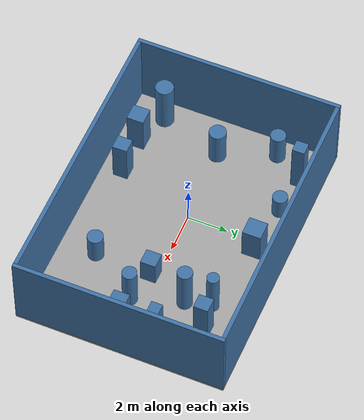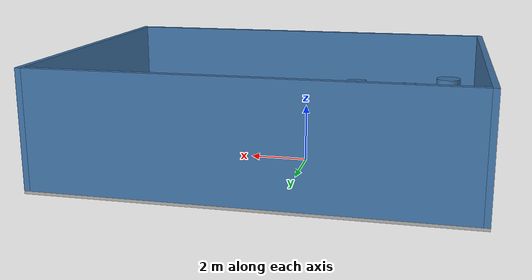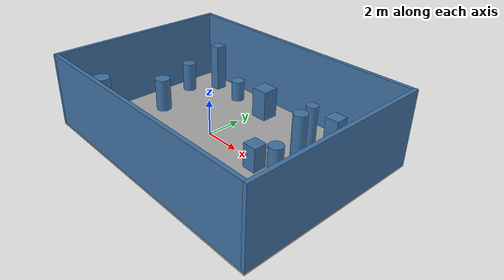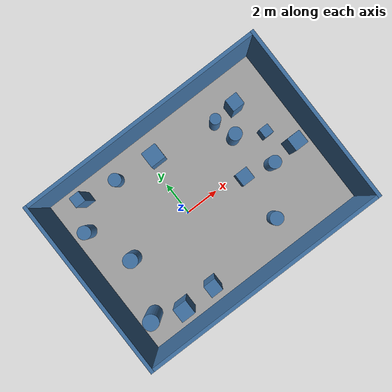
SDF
<?xml version="1.0" encoding="utf-8"?>
<sdf version="1.6">
  <world name="default">
    <gravity>0 0 -9.8</gravity>
    <magnetic_field>6e-06 2.3e-05 -4.2e-05</magnetic_field>
    <physics name="default_physics" type="ode">
      <max_step_size>.001</max_step_size>
      <real_time_factor>1</real_time_factor>
      <real_time_update_rate>1000</real_time_update_rate>
    </physics>
    <scene>
      <ambient>.5 .5 .5 1</ambient>
      <background>.7 .7 .7 1</background>
      <shadows>false</shadows>
    </scene>
    <light name="sun" type="directional">
      <pose>0 0 10 0 0 0</pose>
      <diffuse>.8 .8 .8 1</diffuse>
      <direction>-.2 .1 -1</direction>
    </light>
    <model name="arena_floor">
      <static>true</static>
      <pose>1.000000 0.000000 -0.050000 0.000000 0.000000 0.000000</pose>
      <link name="body">
        <collision name="collision">
          <geometry>
            <box>
              <size>14.400000 10.400000 0.100000</size>
            </box>
          </geometry>
        </collision>
        <visual name="visual">
          <geometry>
            <box>
              <size>14.400000 10.400000 0.100000</size>
            </box>
          </geometry>
          <material>
            <ambient>.65 .65 .65 1</ambient>
            <diffuse>.65 .65 .65 1</diffuse>
          </material>
        </visual>
      </link>
    </model>
    <model name="boundary_west">
      <static>true</static>
      <pose>-6.100000 0.000000 2.000000 0.000000 0.000000 0.000000</pose>
      <link name="body">
        <collision name="collision">
          <geometry>
            <box>
              <size>0.200000 10.400000 4.000000</size>
            </box>
          </geometry>
        </collision>
        <visual name="visual">
          <geometry>
            <box>
              <size>0.200000 10.400000 4.000000</size>
            </box>
          </geometry>
          <material>
            <ambient>.25 .45 .65 1</ambient>
            <diffuse>.25 .45 .65 1</diffuse>
          </material>
        </visual>
      </link>
    </model>
    <model name="boundary_east">
      <static>true</static>
      <pose>8.100000 0.000000 2.000000 0.000000 0.000000 0.000000</pose>
      <link name="body">
        <collision name="collision">
          <geometry>
            <box>
              <size>0.200000 10.400000 4.000000</size>
            </box>
          </geometry>
        </collision>
        <visual name="visual">
          <geometry>
            <box>
              <size>0.200000 10.400000 4.000000</size>
            </box>
          </geometry>
          <material>
            <ambient>.25 .45 .65 1</ambient>
            <diffuse>.25 .45 .65 1</diffuse>
          </material>
        </visual>
      </link>
    </model>
    <model name="boundary_south">
      <static>true</static>
      <pose>1.000000 -5.100000 2.000000 0.000000 0.000000 0.000000</pose>
      <link name="body">
        <collision name="collision">
          <geometry>
            <box>
              <size>14.000000 0.200000 4.000000</size>
            </box>
          </geometry>
        </collision>
        <visual name="visual">
          <geometry>
            <box>
              <size>14.000000 0.200000 4.000000</size>
            </box>
          </geometry>
          <material>
            <ambient>.25 .45 .65 1</ambient>
            <diffuse>.25 .45 .65 1</diffuse>
          </material>
        </visual>
      </link>
    </model>
    <model name="boundary_north">
      <static>true</static>
      <pose>1.000000 5.100000 2.000000 0.000000 0.000000 0.000000</pose>
      <link name="body">
        <collision name="collision">
          <geometry>
            <box>
              <size>14.000000 0.200000 4.000000</size>
            </box>
          </geometry>
        </collision>
        <visual name="visual">
          <geometry>
            <box>
              <size>14.000000 0.200000 4.000000</size>
            </box>
          </geometry>
          <material>
            <ambient>.25 .45 .65 1</ambient>
            <diffuse>.25 .45 .65 1</diffuse>
          </material>
        </visual>
      </link>
    </model>
    <model name="obstacle_000">
      <static>true</static>
      <pose>0.439000 3.572000 0.856500 0.000000 0.000000 0.000000</pose>
      <link name="body">
        <collision name="collision">
          <geometry>
            <box>
              <size>0.930000 0.930000 1.713000</size>
            </box>
          </geometry>
        </collision>
        <visual name="visual">
          <geometry>
            <box>
              <size>0.930000 0.930000 1.713000</size>
            </box>
          </geometry>
          <material>
            <ambient>.25 .45 .65 1</ambient>
            <diffuse>.25 .45 .65 1</diffuse>
          </material>
        </visual>
      </link>
    </model>
    <model name="obstacle_001">
      <static>true</static>
      <pose>3.671000 -0.327000 0.666500 0.000000 0.000000 0.000000</pose>
      <link name="body">
        <collision name="collision">
          <geometry>
            <box>
              <size>0.766000 0.766000 1.333000</size>
            </box>
          </geometry>
        </collision>
        <visual name="visual">
          <geometry>
            <box>
              <size>0.766000 0.766000 1.333000</size>
            </box>
          </geometry>
          <material>
            <ambient>.25 .45 .65 1</ambient>
            <diffuse>.25 .45 .65 1</diffuse>
          </material>
        </visual>
      </link>
    </model>
    <model name="obstacle_002">
      <static>true</static>
      <pose>-1.322000 -3.954000 1.095500 0.000000 0.000000 0.000000</pose>
      <link name="body">
        <collision name="collision">
          <geometry>
            <box>
              <size>0.741000 0.741000 2.191000</size>
            </box>
          </geometry>
        </collision>
        <visual name="visual">
          <geometry>
            <box>
              <size>0.741000 0.741000 2.191000</size>
            </box>
          </geometry>
          <material>
            <ambient>.25 .45 .65 1</ambient>
            <diffuse>.25 .45 .65 1</diffuse>
          </material>
        </visual>
      </link>
    </model>
    <model name="obstacle_003">
      <static>true</static>
      <pose>5.316000 -0.684000 1.084000 0.000000 0.000000 0.000000</pose>
      <link name="body">
        <collision name="collision">
          <geometry>
            <cylinder>
              <radius>0.367500</radius>
              <length>2.168000</length>
            </cylinder>
          </geometry>
        </collision>
        <visual name="visual">
          <geometry>
            <cylinder>
              <radius>0.367500</radius>
              <length>2.168000</length>
            </cylinder>
          </geometry>
          <material>
            <ambient>.25 .45 .65 1</ambient>
            <diffuse>.25 .45 .65 1</diffuse>
          </material>
        </visual>
      </link>
    </model>
    <model name="obstacle_004">
      <static>true</static>
      <pose>4.192000 3.011000 1.178000 0.000000 0.000000 0.000000</pose>
      <link name="body">
        <collision name="collision">
          <geometry>
            <cylinder>
              <radius>0.306500</radius>
              <length>2.356000</length>
            </cylinder>
          </geometry>
        </collision>
        <visual name="visual">
          <geometry>
            <cylinder>
              <radius>0.306500</radius>
              <length>2.356000</length>
            </cylinder>
          </geometry>
          <material>
            <ambient>.25 .45 .65 1</ambient>
            <diffuse>.25 .45 .65 1</diffuse>
          </material>
        </visual>
      </link>
    </model>
    <model name="obstacle_005">
      <static>true</static>
      <pose>5.562000 3.110000 1.120500 0.000000 0.000000 0.000000</pose>
      <link name="body">
        <collision name="collision">
          <geometry>
            <box>
              <size>0.726000 0.726000 2.241000</size>
            </box>
          </geometry>
        </collision>
        <visual name="visual">
          <geometry>
            <box>
              <size>0.726000 0.726000 2.241000</size>
            </box>
          </geometry>
          <material>
            <ambient>.25 .45 .65 1</ambient>
            <diffuse>.25 .45 .65 1</diffuse>
          </material>
        </visual>
      </link>
    </model>
    <model name="obstacle_006">
      <static>true</static>
      <pose>-3.306000 -3.991000 1.053500 0.000000 0.000000 0.000000</pose>
      <link name="body">
        <collision name="collision">
          <geometry>
            <box>
              <size>0.854000 0.854000 2.107000</size>
            </box>
          </geometry>
        </collision>
        <visual name="visual">
          <geometry>
            <box>
              <size>0.854000 0.854000 2.107000</size>
            </box>
          </geometry>
          <material>
            <ambient>.25 .45 .65 1</ambient>
            <diffuse>.25 .45 .65 1</diffuse>
          </material>
        </visual>
      </link>
    </model>
    <model name="obstacle_007">
      <static>true</static>
      <pose>-3.954000 -0.143000 0.939500 0.000000 0.000000 0.000000</pose>
      <link name="body">
        <collision name="collision">
          <geometry>
            <cylinder>
              <radius>0.426000</radius>
              <length>1.879000</length>
            </cylinder>
          </geometry>
        </collision>
        <visual name="visual">
          <geometry>
            <cylinder>
              <radius>0.426000</radius>
              <length>1.879000</length>
            </cylinder>
          </geometry>
          <material>
            <ambient>.25 .45 .65 1</ambient>
            <diffuse>.25 .45 .65 1</diffuse>
          </material>
        </visual>
      </link>
    </model>
    <model name="obstacle_008">
      <static>true</static>
      <pose>-2.045000 3.860000 0.595500 0.000000 0.000000 0.000000</pose>
      <link name="body">
        <collision name="collision">
          <geometry>
            <cylinder>
              <radius>0.376500</radius>
              <length>1.191000</length>
            </cylinder>
          </geometry>
        </collision>
        <visual name="visual">
          <geometry>
            <cylinder>
              <radius>0.376500</radius>
              <length>1.191000</length>
            </cylinder>
          </geometry>
          <material>
            <ambient>.25 .45 .65 1</ambient>
            <diffuse>.25 .45 .65 1</diffuse>
          </material>
        </visual>
      </link>
    </model>
    <model name="obstacle_009">
      <static>true</static>
      <pose>6.106000 0.921000 0.649000 0.000000 0.000000 0.000000</pose>
      <link name="body">
        <collision name="collision">
          <geometry>
            <box>
              <size>0.567000 0.567000 1.298000</size>
            </box>
          </geometry>
        </collision>
        <visual name="visual">
          <geometry>
            <box>
              <size>0.567000 0.567000 1.298000</size>
            </box>
          </geometry>
          <material>
            <ambient>.25 .45 .65 1</ambient>
            <diffuse>.25 .45 .65 1</diffuse>
          </material>
        </visual>
      </link>
    </model>
    <model name="obstacle_010">
      <static>true</static>
      <pose>6.924000 -0.518000 1.161000 0.000000 0.000000 0.000000</pose>
      <link name="body">
        <collision name="collision">
          <geometry>
            <box>
              <size>0.793000 0.793000 2.322000</size>
            </box>
          </geometry>
        </collision>
        <visual name="visual">
          <geometry>
            <box>
              <size>0.793000 0.793000 2.322000</size>
            </box>
          </geometry>
          <material>
            <ambient>.25 .45 .65 1</ambient>
            <diffuse>.25 .45 .65 1</diffuse>
          </material>
        </visual>
      </link>
    </model>
    <model name="obstacle_011">
      <static>true</static>
      <pose>3.635000 -3.171000 0.735000 0.000000 0.000000 0.000000</pose>
      <link name="body">
        <collision name="collision">
          <geometry>
            <cylinder>
              <radius>0.395000</radius>
              <length>1.470000</length>
            </cylinder>
          </geometry>
        </collision>
        <visual name="visual">
          <geometry>
            <cylinder>
              <radius>0.395000</radius>
              <length>1.470000</length>
            </cylinder>
          </geometry>
          <material>
            <ambient>.25 .45 .65 1</ambient>
            <diffuse>.25 .45 .65 1</diffuse>
          </material>
        </visual>
      </link>
    </model>
    <model name="obstacle_012">
      <static>true</static>
      <pose>-4.040000 4.042000 1.372500 0.000000 0.000000 0.000000</pose>
      <link name="body">
        <collision name="collision">
          <geometry>
            <box>
              <size>0.615000 0.615000 2.745000</size>
            </box>
          </geometry>
        </collision>
        <visual name="visual">
          <geometry>
            <box>
              <size>0.615000 0.615000 2.745000</size>
            </box>
          </geometry>
          <material>
            <ambient>.25 .45 .65 1</ambient>
            <diffuse>.25 .45 .65 1</diffuse>
          </material>
        </visual>
      </link>
    </model>
    <model name="obstacle_013">
      <static>true</static>
      <pose>-4.961000 -3.333000 1.280500 0.000000 0.000000 0.000000</pose>
      <link name="body">
        <collision name="collision">
          <geometry>
            <cylinder>
              <radius>0.452000</radius>
              <length>2.561000</length>
            </cylinder>
          </geometry>
        </collision>
        <visual name="visual">
          <geometry>
            <cylinder>
              <radius>0.452000</radius>
              <length>2.561000</length>
            </cylinder>
          </geometry>
          <material>
            <ambient>.25 .45 .65 1</ambient>
            <diffuse>.25 .45 .65 1</diffuse>
          </material>
        </visual>
      </link>
    </model>
    <model name="obstacle_014">
      <static>true</static>
      <pose>4.533000 1.750000 1.259500 0.000000 0.000000 0.000000</pose>
      <link name="body">
        <collision name="collision">
          <geometry>
            <cylinder>
              <radius>0.373000</radius>
              <length>2.519000</length>
            </cylinder>
          </geometry>
        </collision>
        <visual name="visual">
          <geometry>
            <cylinder>
              <radius>0.373000</radius>
              <length>2.519000</length>
            </cylinder>
          </geometry>
          <material>
            <ambient>.25 .45 .65 1</ambient>
            <diffuse>.25 .45 .65 1</diffuse>
          </material>
        </visual>
      </link>
    </model>
    <model name="obstacle_015">
      <static>true</static>
      <pose>-5.025000 2.554000 0.852500 0.000000 0.000000 0.000000</pose>
      <link name="body">
        <collision name="collision">
          <geometry>
            <cylinder>
              <radius>0.388000</radius>
              <length>1.705000</length>
            </cylinder>
          </geometry>
        </collision>
        <visual name="visual">
          <geometry>
            <cylinder>
              <radius>0.388000</radius>
              <length>1.705000</length>
            </cylinder>
          </geometry>
          <material>
            <ambient>.25 .45 .65 1</ambient>
            <diffuse>.25 .45 .65 1</diffuse>
          </material>
        </visual>
      </link>
    </model>
  </world>
</sdf>
